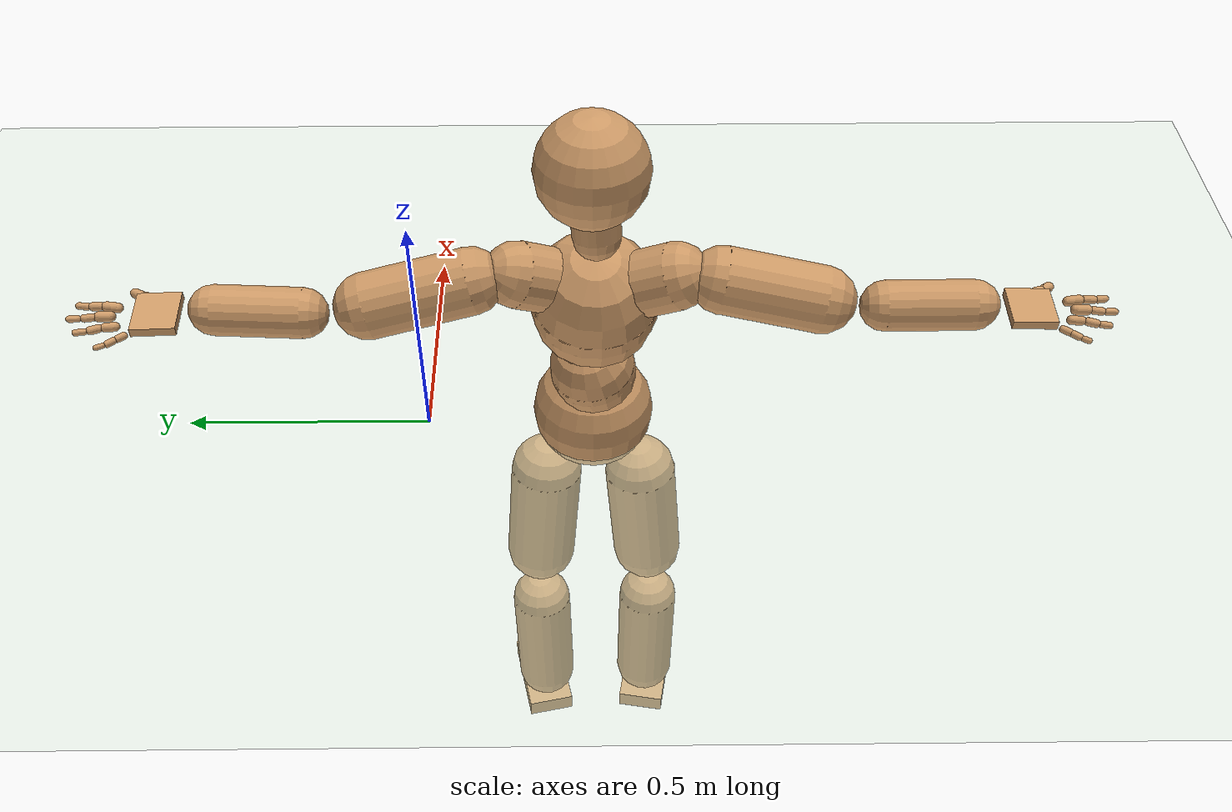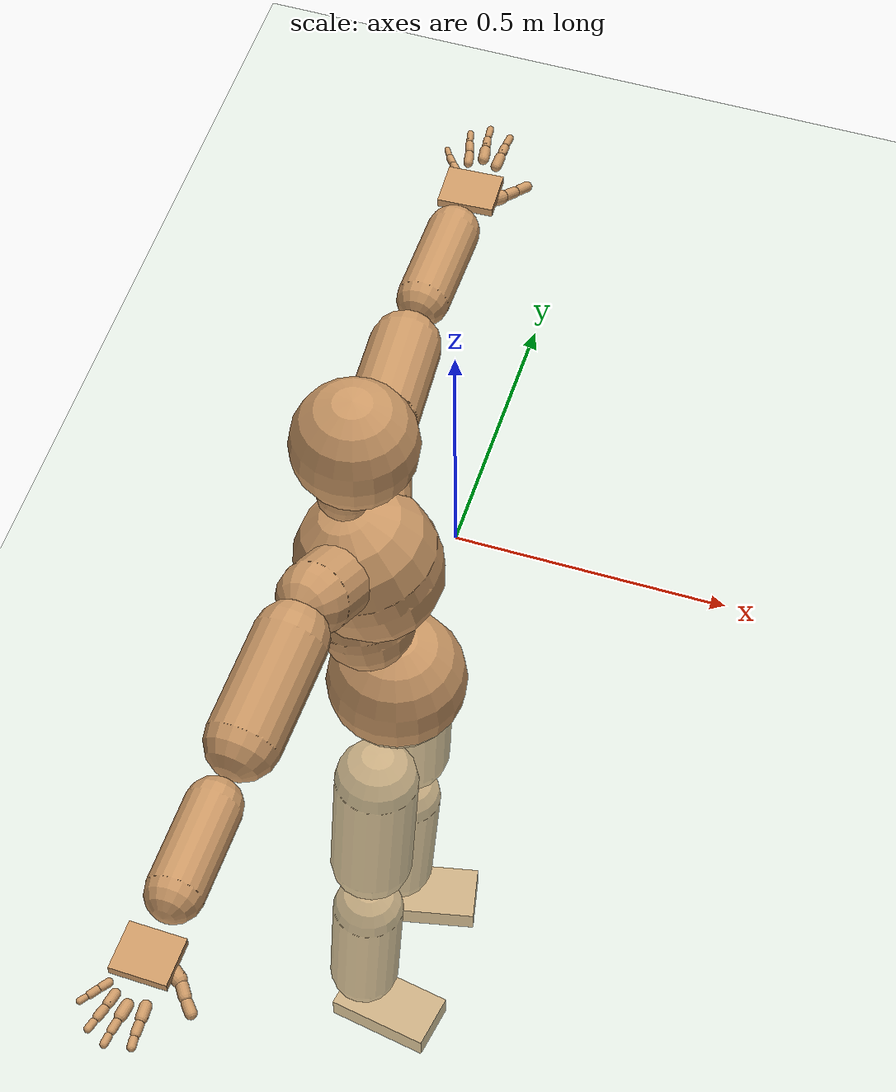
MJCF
<mujoco model="humanoid">
  <compiler coordinate="local" angle="radian"/>
  <default>
    <joint damping="0.0" armature="0.01" stiffness="0.0" limited="true"/>
    <geom conaffinity="1" condim="3" contype="7" margin="0.001" rgba="0.8 0.6 .4 1"/>
  </default>
  <asset>
    <texture type="skybox" builtin="gradient" rgb1=".4 .5 .6" rgb2="0 0 0" width="100" height="100"/>
    <texture builtin="flat" height="1278" mark="cross" markrgb="1 1 1" name="texgeom" random="0.01" rgb1="0.8 0.6 0.4" rgb2="0.8 0.6 0.4" type="cube" width="127"/>
    <texture builtin="checker" height="100" name="texplane" rgb1="0 0 0" rgb2="0.8 0.8 0.8" type="2d" width="100"/>
    <material name="MatPlane" reflectance="0.5" shininess="1" specular="1" texrepeat="60 60" texture="texplane"/>
    <material name="geom" texture="texgeom" texuniform="true"/>
  </asset>
  <worldbody>
    <light cutoff="100" diffuse="1 1 1" dir="-0 0 -1.3" directional="true" exponent="1" pos="0 0 1.3" specular=".1 .1 .1"/>
    <geom conaffinity="1" condim="3" name="floor" pos="0 0 0" rgba="0.8 0.9 0.8 1" size="100 100 .2" type="plane" material="MatPlane"/>
    <body name="Pelvis" pos="0.0011 -0.3418 0.0403">
      <freejoint name="Pelvis"/>
      <geom type="sphere" contype="1" conaffinity="1" density="500" size="0.1231" pos="0.0000 0.0000 0.0000" name="Pelvis"/>
      <body name="L_Hip" pos="-0.0037 0.0947 -0.0945">
        <joint name="L_Hip_x" type="hinge" pos="0 0 0" axis="1 0 0" stiffness="800" damping="80" armature="0.02" range="-180.0000 180.0000"/>
        <joint name="L_Hip_y" type="hinge" pos="0 0 0" axis="0 1 0" stiffness="800" damping="80" armature="0.02" range="-180.0000 180.0000"/>
        <joint name="L_Hip_z" type="hinge" pos="0 0 0" axis="0 0 1" stiffness="800" damping="80" armature="0.02" range="-180.0000 180.0000"/>
        <geom type="capsule" contype="1" conaffinity="1" density="500" fromto="-0.0046 0.0061 -0.0847 -0.0185 0.0245 -0.3388" size="0.0754" name="L_Hip"/>
        <body name="L_Knee" pos="-0.0231 0.0306 -0.4236">
          <joint name="L_Knee_x" type="hinge" pos="0 0 0" axis="1 0 0" stiffness="800" damping="80" armature="0.02" range="-180.0000 180.0000"/>
          <joint name="L_Knee_y" type="hinge" pos="0 0 0" axis="0 1 0" stiffness="800" damping="80" armature="0.02" range="-180.0000 180.0000"/>
          <joint name="L_Knee_z" type="hinge" pos="0 0 0" axis="0 0 1" stiffness="800" damping="80" armature="0.02" range="-180.0000 180.0000"/>
          <geom type="capsule" contype="1" conaffinity="1" density="500" fromto="-0.0060 -0.0020 -0.0910 -0.0242 -0.0080 -0.3638" size="0.0664" name="L_Knee"/>
          <body name="L_Ankle" pos="-0.0302 -0.01 -0.4548">
            <joint name="L_Ankle_x" type="hinge" pos="0 0 0" axis="1 0 0" stiffness="800" damping="80" armature="0.02" range="-180.0000 180.0000"/>
            <joint name="L_Ankle_y" type="hinge" pos="0 0 0" axis="0 1 0" stiffness="800" damping="80" armature="0.02" range="-180.0000 180.0000"/>
            <joint name="L_Ankle_z" type="hinge" pos="0 0 0" axis="0 0 1" stiffness="800" damping="80" armature="0.02" range="-180.0000 180.0000"/>
            <geom type="box" contype="1" conaffinity="1" density="500" pos="0.0608 0.0128 -0.0248" size="0.0984 0.0533 0.0232" quat="0.9946 0.0000 0.0000 0.1037" name="L_Ankle"/>
            <body name="L_Toe" pos="0.1215 0.0256 -0.0496">
              <joint name="L_Toe_x" type="hinge" pos="0 0 0" axis="1 0 0" stiffness="500" damping="50" armature="0.02" range="-180.0000 180.0000"/>
              <joint name="L_Toe_y" type="hinge" pos="0 0 0" axis="0 1 0" stiffness="500" damping="50" armature="0.02" range="-180.0000 180.0000"/>
              <joint name="L_Toe_z" type="hinge" pos="0 0 0" axis="0 0 1" stiffness="500" damping="50" armature="0.02" range="-180.0000 180.0000"/>
              <geom type="box" contype="1" conaffinity="1" density="500" pos="0.0000 0.0000 0.0238" size="0.001 0.0026 0.0011" quat="0.9940 0.0000 0.0000 0.1098" name="L_Toe"/>
            </body>
          </body>
        </body>
      </body>
      <body name="R_Hip" pos="-0.0048 -0.0943 -0.1003">
        <joint name="R_Hip_x" type="hinge" pos="0 0 0" axis="1 0 0" stiffness="800" damping="80" armature="0.02" range="-180.0000 180.0000"/>
        <joint name="R_Hip_y" type="hinge" pos="0 0 0" axis="0 1 0" stiffness="800" damping="80" armature="0.02" range="-180.0000 180.0000"/>
        <joint name="R_Hip_z" type="hinge" pos="0 0 0" axis="0 0 1" stiffness="800" damping="80" armature="0.02" range="-180.0000 180.0000"/>
        <geom type="capsule" contype="1" conaffinity="1" density="500" fromto="-0.0031 -0.0072 -0.0841 -0.0125 -0.0286 -0.3364" size="0.0752" name="R_Hip"/>
        <body name="R_Knee" pos="-0.0156 -0.0358 -0.4205">
          <joint name="R_Knee_x" type="hinge" pos="0 0 0" axis="1 0 0" stiffness="800" damping="80" armature="0.02" range="-180.0000 180.0000"/>
          <joint name="R_Knee_y" type="hinge" pos="0 0 0" axis="0 1 0" stiffness="800" damping="80" armature="0.02" range="-180.0000 180.0000"/>
          <joint name="R_Knee_z" type="hinge" pos="0 0 0" axis="0 0 1" stiffness="800" damping="80" armature="0.02" range="-180.0000 180.0000"/>
          <geom type="capsule" contype="1" conaffinity="1" density="500" fromto="-0.0055 0.0008 -0.0891 -0.0221 0.0032 -0.3563" size="0.0664" name="R_Knee"/>
          <body name="R_Ankle" pos="-0.0276 0.004 -0.4454">
            <joint name="R_Ankle_x" type="hinge" pos="0 0 0" axis="1 0 0" stiffness="800" damping="80" armature="0.02" range="-180.0000 180.0000"/>
            <joint name="R_Ankle_y" type="hinge" pos="0 0 0" axis="0 1 0" stiffness="800" damping="80" armature="0.02" range="-180.0000 180.0000"/>
            <joint name="R_Ankle_z" type="hinge" pos="0 0 0" axis="0 0 1" stiffness="800" damping="80" armature="0.02" range="-180.0000 180.0000"/>
            <geom type="box" contype="1" conaffinity="1" density="500" pos="0.0578 -0.0101 -0.0262" size="0.0984 0.0533 0.0232" quat="0.9963 0.0000 0.0000 -0.0864" name="R_Ankle"/>
            <body name="R_Toe" pos="0.1155 -0.0202 -0.0524">
              <joint name="R_Toe_x" type="hinge" pos="0 0 0" axis="1 0 0" stiffness="500" damping="50" armature="0.02" range="-180.0000 180.0000"/>
              <joint name="R_Toe_y" type="hinge" pos="0 0 0" axis="0 1 0" stiffness="500" damping="50" armature="0.02" range="-180.0000 180.0000"/>
              <joint name="R_Toe_z" type="hinge" pos="0 0 0" axis="0 0 1" stiffness="500" damping="50" armature="0.02" range="-180.0000 180.0000"/>
              <geom type="box" contype="1" conaffinity="1" density="500" pos="0.0000 0.0000 0.0252" size="0.001 0.0026 0.0011" quat="0.9971 0.0000 0.0000 -0.0767" name="R_Toe"/>
            </body>
          </body>
        </body>
      </body>
      <body name="Torso" pos="-0.041 -0.0075 0.1131">
        <joint name="Torso_x" type="hinge" pos="0 0 0" axis="1 0 0" stiffness="1000" damping="100" armature="0.02" range="-180.0000 180.0000"/>
        <joint name="Torso_y" type="hinge" pos="0 0 0" axis="0 1 0" stiffness="1000" damping="100" armature="0.02" range="-180.0000 180.0000"/>
        <joint name="Torso_z" type="hinge" pos="0 0 0" axis="0 0 1" stiffness="1000" damping="100" armature="0.02" range="-180.0000 180.0000"/>
        <geom type="capsule" contype="1" conaffinity="1" density="500" fromto="-0.0134 0.0100 0.0563 -0.0089 0.0066 0.0375" size="0.0837" name="Torso"/>
        <body name="Spine" pos="-0.0223 0.0166 0.0938">
          <joint name="Spine_x" type="hinge" pos="0 0 0" axis="1 0 0" stiffness="1000" damping="100" armature="0.02" range="-180.0000 180.0000"/>
          <joint name="Spine_y" type="hinge" pos="0 0 0" axis="0 1 0" stiffness="1000" damping="100" armature="0.02" range="-180.0000 180.0000"/>
          <joint name="Spine_z" type="hinge" pos="0 0 0" axis="0 0 1" stiffness="1000" damping="100" armature="0.02" range="-180.0000 180.0000"/>
          <geom type="capsule" contype="1" conaffinity="1" density="500" fromto="0.0282 -0.0061 0.0238 0.0188 -0.0041 0.0159" size="0.0701" name="Spine"/>
          <body name="Chest" pos="0.0471 -0.0102 0.0396">
            <joint name="Chest_x" type="hinge" pos="0 0 0" axis="1 0 0" stiffness="1000" damping="100" armature="0.02" range="-180.0000 180.0000"/>
            <joint name="Chest_y" type="hinge" pos="0 0 0" axis="0 1 0" stiffness="1000" damping="100" armature="0.02" range="-180.0000 180.0000"/>
            <joint name="Chest_z" type="hinge" pos="0 0 0" axis="0 0 1" stiffness="1000" damping="100" armature="0.02" range="-180.0000 180.0000"/>
            <geom type="capsule" contype="1" conaffinity="1" density="500" fromto="-0.0282 -0.0017 0.0971 -0.0188 -0.0012 0.0648" size="0.1215" name="Chest"/>
            <body name="Neck" pos="-0.0648 -0.0064 0.2283">
              <joint name="Neck_x" type="hinge" pos="0 0 0" axis="1 0 0" stiffness="500" damping="50" armature="0.02" range="-180.0000 180.0000"/>
              <joint name="Neck_y" type="hinge" pos="0 0 0" axis="0 1 0" stiffness="500" damping="50" armature="0.02" range="-180.0000 180.0000"/>
              <joint name="Neck_z" type="hinge" pos="0 0 0" axis="0 0 1" stiffness="500" damping="50" armature="0.02" range="-180.0000 180.0000"/>
              <geom type="capsule" contype="1" conaffinity="1" density="500" fromto="0.0048 0.0019 0.0314 0.0192 0.0076 0.1256" size="0.0448" name="Neck"/>
              <body name="Head" pos="0.024 0.0096 0.1571">
                <joint name="Head_x" type="hinge" pos="0 0 0" axis="1 0 0" stiffness="500" damping="50" armature="0.02" range="-180.0000 180.0000"/>
                <joint name="Head_y" type="hinge" pos="0 0 0" axis="0 1 0" stiffness="500" damping="50" armature="0.02" range="-180.0000 180.0000"/>
                <joint name="Head_z" type="hinge" pos="0 0 0" axis="0 0 1" stiffness="500" damping="50" armature="0.02" range="-180.0000 180.0000"/>
                <geom type="sphere" contype="1" conaffinity="1" density="500" size="0.1039" pos="0.0000 0.0000 0.0000" name="Head"/>
              </body>
            </body>
            <body name="L_Thorax" pos="-0.034 0.06 0.1312">
              <joint name="L_Thorax_x" type="hinge" pos="0 0 0" axis="1 0 0" stiffness="500" damping="50" armature="0.02" range="-180.0000 180.0000"/>
              <joint name="L_Thorax_y" type="hinge" pos="0 0 0" axis="0 1 0" stiffness="500" damping="50" armature="0.02" range="-180.0000 180.0000"/>
              <joint name="L_Thorax_z" type="hinge" pos="0 0 0" axis="0 0 1" stiffness="500" damping="50" armature="0.02" range="-180.0000 180.0000"/>
              <geom type="capsule" contype="1" conaffinity="1" density="500" fromto="-0.0069 0.0201 0.0106 -0.0277 0.0804 0.0425" size="0.0618" name="L_Thorax"/>
              <body name="L_Shoulder" pos="-0.0346 0.1004 0.0531">
                <joint name="L_Shoulder_x" type="hinge" pos="0 0 0" axis="1 0 0" stiffness="500" damping="50" armature="0.02" range="-180.0000 180.0000"/>
                <joint name="L_Shoulder_y" type="hinge" pos="0 0 0" axis="0 1 0" stiffness="500" damping="50" armature="0.02" range="-180.0000 180.0000"/>
                <joint name="L_Shoulder_z" type="hinge" pos="0 0 0" axis="0 0 1" stiffness="500" damping="50" armature="0.02" range="-180.0000 180.0000"/>
                <geom type="capsule" contype="1" conaffinity="1" density="500" fromto="-0.0069 0.0628 -0.0132 -0.0275 0.2513 -0.0526" size="0.0624" name="L_Shoulder"/>
                <body name="L_Elbow" pos="-0.0344 0.3142 -0.0658">
                  <joint name="L_Elbow_x" type="hinge" pos="0 0 0" axis="1 0 0" stiffness="500" damping="50" armature="0.02" range="-720.0000 720.0000"/>
                  <joint name="L_Elbow_y" type="hinge" pos="0 0 0" axis="0 1 0" stiffness="500" damping="50" armature="0.02" range="-720.0000 720.0000"/>
                  <joint name="L_Elbow_z" type="hinge" pos="0 0 0" axis="0 0 1" stiffness="500" damping="50" armature="0.02" range="-720.0000 720.0000"/>
                  <geom type="capsule" contype="1" conaffinity="1" density="500" fromto="0.0012 0.0536 0.0019 0.0049 0.2146 0.0074" size="0.0468" name="L_Elbow"/>
                  <body name="L_Wrist" pos="0.0061 0.2682 0.0093">
                    <joint name="L_Wrist_x" type="hinge" pos="0 0 0" axis="1 0 0" stiffness="300" damping="30" armature="0.02" range="-180.0000 180.0000"/>
                    <joint name="L_Wrist_y" type="hinge" pos="0 0 0" axis="0 1 0" stiffness="300" damping="30" armature="0.02" range="-180.0000 180.0000"/>
                    <joint name="L_Wrist_z" type="hinge" pos="0 0 0" axis="0 0 1" stiffness="300" damping="30" armature="0.02" range="-180.0000 180.0000"/>
                    <geom type="box" contype="1" conaffinity="1" density="500" pos="-0.0025 0.0526 -0.0094" size="0.041 0.0497 0.0082" quat="0.7234 0.0000 0.0000 -0.6905" name="L_Wrist"/>
                    <body name="L_Index1" pos="0.0209 0.1223 -0.0159">
                      <joint name="L_Index1_x" type="hinge" pos="0 0 0" axis="1 0 0" stiffness="100" damping="10" armature="0.02" range="-180.0000 180.0000"/>
                      <joint name="L_Index1_y" type="hinge" pos="0 0 0" axis="0 1 0" stiffness="100" damping="10" armature="0.02" range="-180.0000 180.0000"/>
                      <joint name="L_Index1_z" type="hinge" pos="0 0 0" axis="0 0 1" stiffness="100" damping="10" armature="0.02" range="-180.0000 180.0000"/>
                      <geom type="capsule" contype="1" conaffinity="1" density="500" fromto="0.0005 0.0068 0.0007 0.0019 0.0272 0.0027" size="0.0096" name="L_Index1"/>
                      <body name="L_Index2" pos="0.0024 0.0339 0.0034">
                        <joint name="L_Index2_x" type="hinge" pos="0 0 0" axis="1 0 0" stiffness="100" damping="10" armature="0.02" range="-180.0000 180.0000"/>
                        <joint name="L_Index2_y" type="hinge" pos="0 0 0" axis="0 1 0" stiffness="100" damping="10" armature="0.02" range="-180.0000 180.0000"/>
                        <joint name="L_Index2_z" type="hinge" pos="0 0 0" axis="0 0 1" stiffness="100" damping="10" armature="0.02" range="-180.0000 180.0000"/>
                        <geom type="capsule" contype="1" conaffinity="1" density="500" fromto="0.0001 0.0048 -0.0003 0.0003 0.0191 -0.0011" size="0.008" name="L_Index2"/>
                        <body name="L_Index3" pos="0.0003 0.0238 -0.0014">
                          <joint name="L_Index3_x" type="hinge" pos="0 0 0" axis="1 0 0" stiffness="100" damping="10" armature="0.02" range="-180.0000 180.0000"/>
                          <joint name="L_Index3_y" type="hinge" pos="0 0 0" axis="0 1 0" stiffness="100" damping="10" armature="0.02" range="-180.0000 180.0000"/>
                          <joint name="L_Index3_z" type="hinge" pos="0 0 0" axis="0 0 1" stiffness="100" damping="10" armature="0.02" range="-180.0000 180.0000"/>
                          <geom type="capsule" contype="1" conaffinity="1" density="500" fromto="0.0005 0.0052 0.0001 0.0019 0.0207 0.0005" size="0.0067" name="L_Index3"/>
                        </body>
                      </body>
                    </body>
                    <body name="L_Middle1" pos="-0.0036 0.1303 -0.013">
                      <joint name="L_Middle1_x" type="hinge" pos="0 0 0" axis="1 0 0" stiffness="100" damping="10" armature="0.02" range="-180.0000 180.0000"/>
                      <joint name="L_Middle1_y" type="hinge" pos="0 0 0" axis="0 1 0" stiffness="100" damping="10" armature="0.02" range="-180.0000 180.0000"/>
                      <joint name="L_Middle1_z" type="hinge" pos="0 0 0" axis="0 0 1" stiffness="100" damping="10" armature="0.02" range="-180.0000 180.0000"/>
                      <geom type="capsule" contype="1" conaffinity="1" density="500" fromto="-0.0008 0.0064 0.0004 -0.0034 0.0258 0.0015" size="0.0099" name="L_Middle1"/>
                      <body name="L_Middle2" pos="-0.0042 0.0322 0.0019">
                        <joint name="L_Middle2_x" type="hinge" pos="0 0 0" axis="1 0 0" stiffness="100" damping="10" armature="0.02" range="-180.0000 180.0000"/>
                        <joint name="L_Middle2_y" type="hinge" pos="0 0 0" axis="0 1 0" stiffness="100" damping="10" armature="0.02" range="-180.0000 180.0000"/>
                        <joint name="L_Middle2_z" type="hinge" pos="0 0 0" axis="0 0 1" stiffness="100" damping="10" armature="0.02" range="-180.0000 180.0000"/>
                        <geom type="capsule" contype="1" conaffinity="1" density="500" fromto="-0.0008 0.0050 -0.0001 -0.0032 0.0199 -0.0005" size="0.0073" name="L_Middle2"/>
                        <body name="L_Middle3" pos="-0.004 0.0249 -0.0007">
                          <joint name="L_Middle3_x" type="hinge" pos="0 0 0" axis="1 0 0" stiffness="100" damping="10" armature="0.02" range="-180.0000 180.0000"/>
                          <joint name="L_Middle3_y" type="hinge" pos="0 0 0" axis="0 1 0" stiffness="100" damping="10" armature="0.02" range="-180.0000 180.0000"/>
                          <joint name="L_Middle3_z" type="hinge" pos="0 0 0" axis="0 0 1" stiffness="100" damping="10" armature="0.02" range="-180.0000 180.0000"/>
                          <geom type="capsule" contype="1" conaffinity="1" density="500" fromto="-0.0004 0.0054 0.0003 -0.0016 0.0215 0.0011" size="0.0062" name="L_Middle3"/>
                        </body>
                      </body>
                    </body>
                    <body name="L_Pinky1" pos="-0.0435 0.1027 -0.0225">
                      <joint name="L_Pinky1_x" type="hinge" pos="0 0 0" axis="1 0 0" stiffness="100" damping="10" armature="0.02" range="-180.0000 180.0000"/>
                      <joint name="L_Pinky1_y" type="hinge" pos="0 0 0" axis="0 1 0" stiffness="100" damping="10" armature="0.02" range="-180.0000 180.0000"/>
                      <joint name="L_Pinky1_z" type="hinge" pos="0 0 0" axis="0 0 1" stiffness="100" damping="10" armature="0.02" range="-180.0000 180.0000"/>
                      <geom type="capsule" contype="1" conaffinity="1" density="500" fromto="-0.0025 0.0032 -0.0001 -0.0100 0.0130 -0.0005" size="0.0069" name="L_Pinky1"/>
                      <body name="L_Pinky2" pos="-0.0125 0.0162 -0.0006">
                        <joint name="L_Pinky2_x" type="hinge" pos="0 0 0" axis="1 0 0" stiffness="100" damping="10" armature="0.02" range="-180.0000 180.0000"/>
                        <joint name="L_Pinky2_y" type="hinge" pos="0 0 0" axis="0 1 0" stiffness="100" damping="10" armature="0.02" range="-180.0000 180.0000"/>
                        <joint name="L_Pinky2_z" type="hinge" pos="0 0 0" axis="0 0 1" stiffness="100" damping="10" armature="0.02" range="-180.0000 180.0000"/>
                        <geom type="capsule" contype="1" conaffinity="1" density="500" fromto="-0.0024 0.0032 -0.0002 -0.0097 0.0129 -0.0010" size="0.0067" name="L_Pinky2"/>
                        <body name="L_Pinky3" pos="-0.0121 0.0161 -0.0012">
                          <joint name="L_Pinky3_x" type="hinge" pos="0 0 0" axis="1 0 0" stiffness="100" damping="10" armature="0.02" range="-180.0000 180.0000"/>
                          <joint name="L_Pinky3_y" type="hinge" pos="0 0 0" axis="0 1 0" stiffness="100" damping="10" armature="0.02" range="-180.0000 180.0000"/>
                          <joint name="L_Pinky3_z" type="hinge" pos="0 0 0" axis="0 0 1" stiffness="100" damping="10" armature="0.02" range="-180.0000 180.0000"/>
                          <geom type="capsule" contype="1" conaffinity="1" density="500" fromto="-0.0020 0.0036 0.0002 -0.0081 0.0145 0.0006" size="0.0051" name="L_Pinky3"/>
                        </body>
                      </body>
                    </body>
                    <body name="L_Ring1" pos="-0.0276 0.1173 -0.0165">
                      <joint name="L_Ring1_x" type="hinge" pos="0 0 0" axis="1 0 0" stiffness="100" damping="10" armature="0.02" range="-180.0000 180.0000"/>
                      <joint name="L_Ring1_y" type="hinge" pos="0 0 0" axis="0 1 0" stiffness="100" damping="10" armature="0.02" range="-180.0000 180.0000"/>
                      <joint name="L_Ring1_z" type="hinge" pos="0 0 0" axis="0 0 1" stiffness="100" damping="10" armature="0.02" range="-180.0000 180.0000"/>
                      <geom type="capsule" contype="1" conaffinity="1" density="500" fromto="-0.0012 0.0059 0.0004 -0.0047 0.0237 0.0016" size="0.0084" name="L_Ring1"/>
                      <body name="L_Ring2" pos="-0.0058 0.0296 0.002">
                        <joint name="L_Ring2_x" type="hinge" pos="0 0 0" axis="1 0 0" stiffness="100" damping="10" armature="0.02" range="-180.0000 180.0000"/>
                        <joint name="L_Ring2_y" type="hinge" pos="0 0 0" axis="0 1 0" stiffness="100" damping="10" armature="0.02" range="-180.0000 180.0000"/>
                        <joint name="L_Ring2_z" type="hinge" pos="0 0 0" axis="0 0 1" stiffness="100" damping="10" armature="0.02" range="-180.0000 180.0000"/>
                        <geom type="capsule" contype="1" conaffinity="1" density="500" fromto="-0.0015 0.0048 -0.0002 -0.0061 0.0191 -0.0009" size="0.0077" name="L_Ring2"/>
                        <body name="L_Ring3" pos="-0.0077 0.0239 -0.0012">
                          <joint name="L_Ring3_x" type="hinge" pos="0 0 0" axis="1 0 0" stiffness="100" damping="10" armature="0.02" range="-180.0000 180.0000"/>
                          <joint name="L_Ring3_y" type="hinge" pos="0 0 0" axis="0 1 0" stiffness="100" damping="10" armature="0.02" range="-180.0000 180.0000"/>
                          <joint name="L_Ring3_z" type="hinge" pos="0 0 0" axis="0 0 1" stiffness="100" damping="10" armature="0.02" range="-180.0000 180.0000"/>
                          <geom type="capsule" contype="1" conaffinity="1" density="500" fromto="-0.0011 0.0052 0.0002 -0.0045 0.0207 0.0007" size="0.006" name="L_Ring3"/>
                        </body>
                      </body>
                    </body>
                    <body name="L_Thumb1" pos="0.0293 0.0537 -0.0256">
                      <joint name="L_Thumb1_x" type="hinge" pos="0 0 0" axis="1 0 0" stiffness="100" damping="10" armature="0.02" range="-180.0000 180.0000"/>
                      <joint name="L_Thumb1_y" type="hinge" pos="0 0 0" axis="0 1 0" stiffness="100" damping="10" armature="0.02" range="-180.0000 180.0000"/>
                      <joint name="L_Thumb1_z" type="hinge" pos="0 0 0" axis="0 0 1" stiffness="100" damping="10" armature="0.02" range="-180.0000 180.0000"/>
                      <geom type="capsule" contype="1" conaffinity="1" density="500" fromto="0.0050 0.0039 0.0002 0.0201 0.0156 0.0009" size="0.013" name="L_Thumb1"/>
                      <body name="L_Thumb2" pos="0.0251 0.0195 0.0011">
                        <joint name="L_Thumb2_x" type="hinge" pos="0 0 0" axis="1 0 0" stiffness="100" damping="10" armature="0.02" range="-180.0000 180.0000"/>
                        <joint name="L_Thumb2_y" type="hinge" pos="0 0 0" axis="0 1 0" stiffness="100" damping="10" armature="0.02" range="-180.0000 180.0000"/>
                        <joint name="L_Thumb2_z" type="hinge" pos="0 0 0" axis="0 0 1" stiffness="100" damping="10" armature="0.02" range="-180.0000 180.0000"/>
                        <geom type="capsule" contype="1" conaffinity="1" density="500" fromto="0.0031 0.0045 -0.0012 0.0122 0.0180 -0.0049" size="0.0101" name="L_Thumb2"/>
                        <body name="L_Thumb3" pos="0.0153 0.0225 -0.0061">
                          <joint name="L_Thumb3_x" type="hinge" pos="0 0 0" axis="1 0 0" stiffness="100" damping="10" armature="0.02" range="-180.0000 180.0000"/>
                          <joint name="L_Thumb3_y" type="hinge" pos="0 0 0" axis="0 1 0" stiffness="100" damping="10" armature="0.02" range="-180.0000 180.0000"/>
                          <joint name="L_Thumb3_z" type="hinge" pos="0 0 0" axis="0 0 1" stiffness="100" damping="10" armature="0.02" range="-180.0000 180.0000"/>
                          <geom type="capsule" contype="1" conaffinity="1" density="500" fromto="0.0035 0.0049 -0.0008 0.0138 0.0196 -0.0033" size="0.0094" name="L_Thumb3"/>
                        </body>
                      </body>
                    </body>
                  </body>
                </body>
              </body>
            </body>
            <body name="R_Thorax" pos="-0.0424 -0.0623 0.1263">
              <joint name="R_Thorax_x" type="hinge" pos="0 0 0" axis="1 0 0" stiffness="500" damping="50" armature="0.02" range="-180.0000 180.0000"/>
              <joint name="R_Thorax_y" type="hinge" pos="0 0 0" axis="0 1 0" stiffness="500" damping="50" armature="0.02" range="-180.0000 180.0000"/>
              <joint name="R_Thorax_z" type="hinge" pos="0 0 0" axis="0 0 1" stiffness="500" damping="50" armature="0.02" range="-180.0000 180.0000"/>
              <geom type="capsule" contype="1" conaffinity="1" density="500" fromto="-0.0051 -0.0219 0.0106 -0.0204 -0.0874 0.0425" size="0.0633" name="R_Thorax"/>
              <body name="R_Shoulder" pos="-0.0255 -0.1093 0.0531">
                <joint name="R_Shoulder_x" type="hinge" pos="0 0 0" axis="1 0 0" stiffness="500" damping="50" armature="0.02" range="-180.0000 180.0000"/>
                <joint name="R_Shoulder_y" type="hinge" pos="0 0 0" axis="0 1 0" stiffness="500" damping="50" armature="0.02" range="-180.0000 180.0000"/>
                <joint name="R_Shoulder_z" type="hinge" pos="0 0 0" axis="0 0 1" stiffness="500" damping="50" armature="0.02" range="-180.0000 180.0000"/>
                <geom type="capsule" contype="1" conaffinity="1" density="500" fromto="-0.0053 -0.0609 -0.0116 -0.0212 -0.2437 -0.0463" size="0.0629" name="R_Shoulder"/>
                <body name="R_Elbow" pos="-0.0265 -0.3046 -0.0578">
                  <joint name="R_Elbow_x" type="hinge" pos="0 0 0" axis="1 0 0" stiffness="500" damping="50" armature="0.02" range="-720.0000 720.0000"/>
                  <joint name="R_Elbow_y" type="hinge" pos="0 0 0" axis="0 1 0" stiffness="500" damping="50" armature="0.02" range="-720.0000 720.0000"/>
                  <joint name="R_Elbow_z" type="hinge" pos="0 0 0" axis="0 0 1" stiffness="500" damping="50" armature="0.02" range="-720.0000 720.0000"/>
                  <geom type="capsule" contype="1" conaffinity="1" density="500" fromto="-0.0009 -0.0537 0.0011 -0.0036 -0.2147 0.0042" size="0.047" name="R_Elbow"/>
                  <body name="R_Wrist" pos="-0.0044 -0.2683 0.0053">
                    <joint name="R_Wrist_x" type="hinge" pos="0 0 0" axis="1 0 0" stiffness="300" damping="30" armature="0.02" range="-180.0000 180.0000"/>
                    <joint name="R_Wrist_y" type="hinge" pos="0 0 0" axis="0 1 0" stiffness="300" damping="30" armature="0.02" range="-180.0000 180.0000"/>
                    <joint name="R_Wrist_z" type="hinge" pos="0 0 0" axis="0 0 1" stiffness="300" damping="30" armature="0.02" range="-180.0000 180.0000"/>
                    <geom type="box" contype="1" conaffinity="1" density="500" pos="-0.0015 -0.0517 -0.0089" size="0.041 0.0464 0.0084" quat="0.7171 0.0000 0.0000 0.6970" name="R_Wrist"/>
                    <body name="R_Index1" pos="0.0228 -0.1205 -0.0149">
                      <joint name="R_Index1_x" type="hinge" pos="0 0 0" axis="1 0 0" stiffness="100" damping="10" armature="0.02" range="-180.0000 180.0000"/>
                      <joint name="R_Index1_y" type="hinge" pos="0 0 0" axis="0 1 0" stiffness="100" damping="10" armature="0.02" range="-180.0000 180.0000"/>
                      <joint name="R_Index1_z" type="hinge" pos="0 0 0" axis="0 0 1" stiffness="100" damping="10" armature="0.02" range="-180.0000 180.0000"/>
                      <geom type="capsule" contype="1" conaffinity="1" density="500" fromto="0.0005 -0.0068 0.0007 0.0019 -0.0272 0.0027" size="0.0096" name="R_Index1"/>
                      <body name="R_Index2" pos="0.0024 -0.0339 0.0034">
                        <joint name="R_Index2_x" type="hinge" pos="0 0 0" axis="1 0 0" stiffness="100" damping="10" armature="0.02" range="-180.0000 180.0000"/>
                        <joint name="R_Index2_y" type="hinge" pos="0 0 0" axis="0 1 0" stiffness="100" damping="10" armature="0.02" range="-180.0000 180.0000"/>
                        <joint name="R_Index2_z" type="hinge" pos="0 0 0" axis="0 0 1" stiffness="100" damping="10" armature="0.02" range="-180.0000 180.0000"/>
                        <geom type="capsule" contype="1" conaffinity="1" density="500" fromto="0.0001 -0.0048 -0.0003 0.0003 -0.0191 -0.0011" size="0.008" name="R_Index2"/>
                        <body name="R_Index3" pos="0.0003 -0.0238 -0.0014">
                          <joint name="R_Index3_x" type="hinge" pos="0 0 0" axis="1 0 0" stiffness="100" damping="10" armature="0.02" range="-180.0000 180.0000"/>
                          <joint name="R_Index3_y" type="hinge" pos="0 0 0" axis="0 1 0" stiffness="100" damping="10" armature="0.02" range="-180.0000 180.0000"/>
                          <joint name="R_Index3_z" type="hinge" pos="0 0 0" axis="0 0 1" stiffness="100" damping="10" armature="0.02" range="-180.0000 180.0000"/>
                          <geom type="capsule" contype="1" conaffinity="1" density="500" fromto="0.0005 -0.0044 0.0001 0.0019 -0.0175 0.0005" size="0.007" name="R_Index3"/>
                        </body>
                      </body>
                    </body>
                    <body name="R_Middle1" pos="-0.0016 -0.1285 -0.012">
                      <joint name="R_Middle1_x" type="hinge" pos="0 0 0" axis="1 0 0" stiffness="100" damping="10" armature="0.02" range="-180.0000 180.0000"/>
                      <joint name="R_Middle1_y" type="hinge" pos="0 0 0" axis="0 1 0" stiffness="100" damping="10" armature="0.02" range="-180.0000 180.0000"/>
                      <joint name="R_Middle1_z" type="hinge" pos="0 0 0" axis="0 0 1" stiffness="100" damping="10" armature="0.02" range="-180.0000 180.0000"/>
                      <geom type="capsule" contype="1" conaffinity="1" density="500" fromto="-0.0008 -0.0064 0.0004 -0.0034 -0.0258 0.0015" size="0.0099" name="R_Middle1"/>
                      <body name="R_Middle2" pos="-0.0042 -0.0322 0.0019">
                        <joint name="R_Middle2_x" type="hinge" pos="0 0 0" axis="1 0 0" stiffness="100" damping="10" armature="0.02" range="-180.0000 180.0000"/>
                        <joint name="R_Middle2_y" type="hinge" pos="0 0 0" axis="0 1 0" stiffness="100" damping="10" armature="0.02" range="-180.0000 180.0000"/>
                        <joint name="R_Middle2_z" type="hinge" pos="0 0 0" axis="0 0 1" stiffness="100" damping="10" armature="0.02" range="-180.0000 180.0000"/>
                        <geom type="capsule" contype="1" conaffinity="1" density="500" fromto="-0.0008 -0.0050 -0.0001 -0.0032 -0.0199 -0.0005" size="0.0073" name="R_Middle2"/>
                        <body name="R_Middle3" pos="-0.004 -0.0249 -0.0007">
                          <joint name="R_Middle3_x" type="hinge" pos="0 0 0" axis="1 0 0" stiffness="100" damping="10" armature="0.02" range="-180.0000 180.0000"/>
                          <joint name="R_Middle3_y" type="hinge" pos="0 0 0" axis="0 1 0" stiffness="100" damping="10" armature="0.02" range="-180.0000 180.0000"/>
                          <joint name="R_Middle3_z" type="hinge" pos="0 0 0" axis="0 0 1" stiffness="100" damping="10" armature="0.02" range="-180.0000 180.0000"/>
                          <geom type="capsule" contype="1" conaffinity="1" density="500" fromto="-0.0004 -0.0046 0.0003 -0.0016 -0.0183 0.0011" size="0.0064" name="R_Middle3"/>
                        </body>
                      </body>
                    </body>
                    <body name="R_Pinky1" pos="-0.0416 -0.1009 -0.0216">
                      <joint name="R_Pinky1_x" type="hinge" pos="0 0 0" axis="1 0 0" stiffness="100" damping="10" armature="0.02" range="-180.0000 180.0000"/>
                      <joint name="R_Pinky1_y" type="hinge" pos="0 0 0" axis="0 1 0" stiffness="100" damping="10" armature="0.02" range="-180.0000 180.0000"/>
                      <joint name="R_Pinky1_z" type="hinge" pos="0 0 0" axis="0 0 1" stiffness="100" damping="10" armature="0.02" range="-180.0000 180.0000"/>
                      <geom type="capsule" contype="1" conaffinity="1" density="500" fromto="-0.0025 -0.0032 -0.0001 -0.0100 -0.0130 -0.0005" size="0.0069" name="R_Pinky1"/>
                      <body name="R_Pinky2" pos="-0.0125 -0.0162 -0.0006">
                        <joint name="R_Pinky2_x" type="hinge" pos="0 0 0" axis="1 0 0" stiffness="100" damping="10" armature="0.02" range="-180.0000 180.0000"/>
                        <joint name="R_Pinky2_y" type="hinge" pos="0 0 0" axis="0 1 0" stiffness="100" damping="10" armature="0.02" range="-180.0000 180.0000"/>
                        <joint name="R_Pinky2_z" type="hinge" pos="0 0 0" axis="0 0 1" stiffness="100" damping="10" armature="0.02" range="-180.0000 180.0000"/>
                        <geom type="capsule" contype="1" conaffinity="1" density="500" fromto="-0.0024 -0.0032 -0.0002 -0.0097 -0.0129 -0.0010" size="0.0067" name="R_Pinky2"/>
                        <body name="R_Pinky3" pos="-0.0121 -0.0161 -0.0012">
                          <joint name="R_Pinky3_x" type="hinge" pos="0 0 0" axis="1 0 0" stiffness="100" damping="10" armature="0.02" range="-180.0000 180.0000"/>
                          <joint name="R_Pinky3_y" type="hinge" pos="0 0 0" axis="0 1 0" stiffness="100" damping="10" armature="0.02" range="-180.0000 180.0000"/>
                          <joint name="R_Pinky3_z" type="hinge" pos="0 0 0" axis="0 0 1" stiffness="100" damping="10" armature="0.02" range="-180.0000 180.0000"/>
                          <geom type="capsule" contype="1" conaffinity="1" density="500" fromto="-0.0020 -0.0028 0.0002 -0.0081 -0.0113 0.0006" size="0.0054" name="R_Pinky3"/>
                        </body>
                      </body>
                    </body>
                    <body name="R_Ring1" pos="-0.0256 -0.1156 -0.0155">
                      <joint name="R_Ring1_x" type="hinge" pos="0 0 0" axis="1 0 0" stiffness="100" damping="10" armature="0.02" range="-180.0000 180.0000"/>
                      <joint name="R_Ring1_y" type="hinge" pos="0 0 0" axis="0 1 0" stiffness="100" damping="10" armature="0.02" range="-180.0000 180.0000"/>
                      <joint name="R_Ring1_z" type="hinge" pos="0 0 0" axis="0 0 1" stiffness="100" damping="10" armature="0.02" range="-180.0000 180.0000"/>
                      <geom type="capsule" contype="1" conaffinity="1" density="500" fromto="-0.0012 -0.0059 0.0004 -0.0047 -0.0237 0.0016" size="0.0084" name="R_Ring1"/>
                      <body name="R_Ring2" pos="-0.0058 -0.0296 0.002">
                        <joint name="R_Ring2_x" type="hinge" pos="0 0 0" axis="1 0 0" stiffness="100" damping="10" armature="0.02" range="-180.0000 180.0000"/>
                        <joint name="R_Ring2_y" type="hinge" pos="0 0 0" axis="0 1 0" stiffness="100" damping="10" armature="0.02" range="-180.0000 180.0000"/>
                        <joint name="R_Ring2_z" type="hinge" pos="0 0 0" axis="0 0 1" stiffness="100" damping="10" armature="0.02" range="-180.0000 180.0000"/>
                        <geom type="capsule" contype="1" conaffinity="1" density="500" fromto="-0.0015 -0.0048 -0.0002 -0.0061 -0.0191 -0.0009" size="0.0077" name="R_Ring2"/>
                        <body name="R_Ring3" pos="-0.0077 -0.0239 -0.0012">
                          <joint name="R_Ring3_x" type="hinge" pos="0 0 0" axis="1 0 0" stiffness="100" damping="10" armature="0.02" range="-180.0000 180.0000"/>
                          <joint name="R_Ring3_y" type="hinge" pos="0 0 0" axis="0 1 0" stiffness="100" damping="10" armature="0.02" range="-180.0000 180.0000"/>
                          <joint name="R_Ring3_z" type="hinge" pos="0 0 0" axis="0 0 1" stiffness="100" damping="10" armature="0.02" range="-180.0000 180.0000"/>
                          <geom type="capsule" contype="1" conaffinity="1" density="500" fromto="-0.0011 -0.0044 0.0002 -0.0045 -0.0175 0.0007" size="0.0063" name="R_Ring3"/>
                        </body>
                      </body>
                    </body>
                    <body name="R_Thumb1" pos="0.0312 -0.0519 -0.0247">
                      <joint name="R_Thumb1_x" type="hinge" pos="0 0 0" axis="1 0 0" stiffness="100" damping="10" armature="0.02" range="-180.0000 180.0000"/>
                      <joint name="R_Thumb1_y" type="hinge" pos="0 0 0" axis="0 1 0" stiffness="100" damping="10" armature="0.02" range="-180.0000 180.0000"/>
                      <joint name="R_Thumb1_z" type="hinge" pos="0 0 0" axis="0 0 1" stiffness="100" damping="10" armature="0.02" range="-180.0000 180.0000"/>
                      <geom type="capsule" contype="1" conaffinity="1" density="500" fromto="0.0050 -0.0039 0.0002 0.0201 -0.0156 0.0009" size="0.013" name="R_Thumb1"/>
                      <body name="R_Thumb2" pos="0.0251 -0.0195 0.0011">
                        <joint name="R_Thumb2_x" type="hinge" pos="0 0 0" axis="1 0 0" stiffness="100" damping="10" armature="0.02" range="-180.0000 180.0000"/>
                        <joint name="R_Thumb2_y" type="hinge" pos="0 0 0" axis="0 1 0" stiffness="100" damping="10" armature="0.02" range="-180.0000 180.0000"/>
                        <joint name="R_Thumb2_z" type="hinge" pos="0 0 0" axis="0 0 1" stiffness="100" damping="10" armature="0.02" range="-180.0000 180.0000"/>
                        <geom type="capsule" contype="1" conaffinity="1" density="500" fromto="0.0031 -0.0045 -0.0012 0.0122 -0.0180 -0.0049" size="0.0101" name="R_Thumb2"/>
                        <body name="R_Thumb3" pos="0.0153 -0.0225 -0.0061">
                          <joint name="R_Thumb3_x" type="hinge" pos="0 0 0" axis="1 0 0" stiffness="100" damping="10" armature="0.02" range="-180.0000 180.0000"/>
                          <joint name="R_Thumb3_y" type="hinge" pos="0 0 0" axis="0 1 0" stiffness="100" damping="10" armature="0.02" range="-180.0000 180.0000"/>
                          <joint name="R_Thumb3_z" type="hinge" pos="0 0 0" axis="0 0 1" stiffness="100" damping="10" armature="0.02" range="-180.0000 180.0000"/>
                          <geom type="capsule" contype="1" conaffinity="1" density="500" fromto="0.0035 -0.0041 -0.0008 0.0138 -0.0164 -0.0033" size="0.0096" name="R_Thumb3"/>
                        </body>
                      </body>
                    </body>
                  </body>
                </body>
              </body>
            </body>
          </body>
        </body>
      </body>
    </body>
  </worldbody>
  <actuator>
    <motor name="L_Hip_x" joint="L_Hip_x" gear="500"/>
    <motor name="L_Hip_y" joint="L_Hip_y" gear="500"/>
    <motor name="L_Hip_z" joint="L_Hip_z" gear="500"/>
    <motor name="L_Knee_x" joint="L_Knee_x" gear="500"/>
    <motor name="L_Knee_y" joint="L_Knee_y" gear="500"/>
    <motor name="L_Knee_z" joint="L_Knee_z" gear="500"/>
    <motor name="L_Ankle_x" joint="L_Ankle_x" gear="500"/>
    <motor name="L_Ankle_y" joint="L_Ankle_y" gear="500"/>
    <motor name="L_Ankle_z" joint="L_Ankle_z" gear="500"/>
    <motor name="L_Toe_x" joint="L_Toe_x" gear="500"/>
    <motor name="L_Toe_y" joint="L_Toe_y" gear="500"/>
    <motor name="L_Toe_z" joint="L_Toe_z" gear="500"/>
    <motor name="R_Hip_x" joint="R_Hip_x" gear="500"/>
    <motor name="R_Hip_y" joint="R_Hip_y" gear="500"/>
    <motor name="R_Hip_z" joint="R_Hip_z" gear="500"/>
    <motor name="R_Knee_x" joint="R_Knee_x" gear="500"/>
    <motor name="R_Knee_y" joint="R_Knee_y" gear="500"/>
    <motor name="R_Knee_z" joint="R_Knee_z" gear="500"/>
    <motor name="R_Ankle_x" joint="R_Ankle_x" gear="500"/>
    <motor name="R_Ankle_y" joint="R_Ankle_y" gear="500"/>
    <motor name="R_Ankle_z" joint="R_Ankle_z" gear="500"/>
    <motor name="R_Toe_x" joint="R_Toe_x" gear="500"/>
    <motor name="R_Toe_y" joint="R_Toe_y" gear="500"/>
    <motor name="R_Toe_z" joint="R_Toe_z" gear="500"/>
    <motor name="Torso_x" joint="Torso_x" gear="500"/>
    <motor name="Torso_y" joint="Torso_y" gear="500"/>
    <motor name="Torso_z" joint="Torso_z" gear="500"/>
    <motor name="Spine_x" joint="Spine_x" gear="500"/>
    <motor name="Spine_y" joint="Spine_y" gear="500"/>
    <motor name="Spine_z" joint="Spine_z" gear="500"/>
    <motor name="Chest_x" joint="Chest_x" gear="500"/>
    <motor name="Chest_y" joint="Chest_y" gear="500"/>
    <motor name="Chest_z" joint="Chest_z" gear="500"/>
    <motor name="Neck_x" joint="Neck_x" gear="500"/>
    <motor name="Neck_y" joint="Neck_y" gear="500"/>
    <motor name="Neck_z" joint="Neck_z" gear="500"/>
    <motor name="Head_x" joint="Head_x" gear="500"/>
    <motor name="Head_y" joint="Head_y" gear="500"/>
    <motor name="Head_z" joint="Head_z" gear="500"/>
    <motor name="L_Thorax_x" joint="L_Thorax_x" gear="500"/>
    <motor name="L_Thorax_y" joint="L_Thorax_y" gear="500"/>
    <motor name="L_Thorax_z" joint="L_Thorax_z" gear="500"/>
    <motor name="L_Shoulder_x" joint="L_Shoulder_x" gear="500"/>
    <motor name="L_Shoulder_y" joint="L_Shoulder_y" gear="500"/>
    <motor name="L_Shoulder_z" joint="L_Shoulder_z" gear="500"/>
    <motor name="L_Elbow_x" joint="L_Elbow_x" gear="500"/>
    <motor name="L_Elbow_y" joint="L_Elbow_y" gear="500"/>
    <motor name="L_Elbow_z" joint="L_Elbow_z" gear="500"/>
    <motor name="L_Wrist_x" joint="L_Wrist_x" gear="500"/>
    <motor name="L_Wrist_y" joint="L_Wrist_y" gear="500"/>
    <motor name="L_Wrist_z" joint="L_Wrist_z" gear="500"/>
    <motor name="L_Index1_x" joint="L_Index1_x" gear="500"/>
    <motor name="L_Index1_y" joint="L_Index1_y" gear="500"/>
    <motor name="L_Index1_z" joint="L_Index1_z" gear="500"/>
    <motor name="L_Index2_x" joint="L_Index2_x" gear="500"/>
    <motor name="L_Index2_y" joint="L_Index2_y" gear="500"/>
    <motor name="L_Index2_z" joint="L_Index2_z" gear="500"/>
    <motor name="L_Index3_x" joint="L_Index3_x" gear="500"/>
    <motor name="L_Index3_y" joint="L_Index3_y" gear="500"/>
    <motor name="L_Index3_z" joint="L_Index3_z" gear="500"/>
    <motor name="L_Middle1_x" joint="L_Middle1_x" gear="500"/>
    <motor name="L_Middle1_y" joint="L_Middle1_y" gear="500"/>
    <motor name="L_Middle1_z" joint="L_Middle1_z" gear="500"/>
    <motor name="L_Middle2_x" joint="L_Middle2_x" gear="500"/>
    <motor name="L_Middle2_y" joint="L_Middle2_y" gear="500"/>
    <motor name="L_Middle2_z" joint="L_Middle2_z" gear="500"/>
    <motor name="L_Middle3_x" joint="L_Middle3_x" gear="500"/>
    <motor name="L_Middle3_y" joint="L_Middle3_y" gear="500"/>
    <motor name="L_Middle3_z" joint="L_Middle3_z" gear="500"/>
    <motor name="L_Pinky1_x" joint="L_Pinky1_x" gear="500"/>
    <motor name="L_Pinky1_y" joint="L_Pinky1_y" gear="500"/>
    <motor name="L_Pinky1_z" joint="L_Pinky1_z" gear="500"/>
    <motor name="L_Pinky2_x" joint="L_Pinky2_x" gear="500"/>
    <motor name="L_Pinky2_y" joint="L_Pinky2_y" gear="500"/>
    <motor name="L_Pinky2_z" joint="L_Pinky2_z" gear="500"/>
    <motor name="L_Pinky3_x" joint="L_Pinky3_x" gear="500"/>
    <motor name="L_Pinky3_y" joint="L_Pinky3_y" gear="500"/>
    <motor name="L_Pinky3_z" joint="L_Pinky3_z" gear="500"/>
    <motor name="L_Ring1_x" joint="L_Ring1_x" gear="500"/>
    <motor name="L_Ring1_y" joint="L_Ring1_y" gear="500"/>
    <motor name="L_Ring1_z" joint="L_Ring1_z" gear="500"/>
    <motor name="L_Ring2_x" joint="L_Ring2_x" gear="500"/>
    <motor name="L_Ring2_y" joint="L_Ring2_y" gear="500"/>
    <motor name="L_Ring2_z" joint="L_Ring2_z" gear="500"/>
    <motor name="L_Ring3_x" joint="L_Ring3_x" gear="500"/>
    <motor name="L_Ring3_y" joint="L_Ring3_y" gear="500"/>
    <motor name="L_Ring3_z" joint="L_Ring3_z" gear="500"/>
    <motor name="L_Thumb1_x" joint="L_Thumb1_x" gear="500"/>
    <motor name="L_Thumb1_y" joint="L_Thumb1_y" gear="500"/>
    <motor name="L_Thumb1_z" joint="L_Thumb1_z" gear="500"/>
    <motor name="L_Thumb2_x" joint="L_Thumb2_x" gear="500"/>
    <motor name="L_Thumb2_y" joint="L_Thumb2_y" gear="500"/>
    <motor name="L_Thumb2_z" joint="L_Thumb2_z" gear="500"/>
    <motor name="L_Thumb3_x" joint="L_Thumb3_x" gear="500"/>
    <motor name="L_Thumb3_y" joint="L_Thumb3_y" gear="500"/>
    <motor name="L_Thumb3_z" joint="L_Thumb3_z" gear="500"/>
    <motor name="R_Thorax_x" joint="R_Thorax_x" gear="500"/>
    <motor name="R_Thorax_y" joint="R_Thorax_y" gear="500"/>
    <motor name="R_Thorax_z" joint="R_Thorax_z" gear="500"/>
    <motor name="R_Shoulder_x" joint="R_Shoulder_x" gear="500"/>
    <motor name="R_Shoulder_y" joint="R_Shoulder_y" gear="500"/>
    <motor name="R_Shoulder_z" joint="R_Shoulder_z" gear="500"/>
    <motor name="R_Elbow_x" joint="R_Elbow_x" gear="500"/>
    <motor name="R_Elbow_y" joint="R_Elbow_y" gear="500"/>
    <motor name="R_Elbow_z" joint="R_Elbow_z" gear="500"/>
    <motor name="R_Wrist_x" joint="R_Wrist_x" gear="500"/>
    <motor name="R_Wrist_y" joint="R_Wrist_y" gear="500"/>
    <motor name="R_Wrist_z" joint="R_Wrist_z" gear="500"/>
    <motor name="R_Index1_x" joint="R_Index1_x" gear="500"/>
    <motor name="R_Index1_y" joint="R_Index1_y" gear="500"/>
    <motor name="R_Index1_z" joint="R_Index1_z" gear="500"/>
    <motor name="R_Index2_x" joint="R_Index2_x" gear="500"/>
    <motor name="R_Index2_y" joint="R_Index2_y" gear="500"/>
    <motor name="R_Index2_z" joint="R_Index2_z" gear="500"/>
    <motor name="R_Index3_x" joint="R_Index3_x" gear="500"/>
    <motor name="R_Index3_y" joint="R_Index3_y" gear="500"/>
    <motor name="R_Index3_z" joint="R_Index3_z" gear="500"/>
    <motor name="R_Middle1_x" joint="R_Middle1_x" gear="500"/>
    <motor name="R_Middle1_y" joint="R_Middle1_y" gear="500"/>
    <motor name="R_Middle1_z" joint="R_Middle1_z" gear="500"/>
    <motor name="R_Middle2_x" joint="R_Middle2_x" gear="500"/>
    <motor name="R_Middle2_y" joint="R_Middle2_y" gear="500"/>
    <motor name="R_Middle2_z" joint="R_Middle2_z" gear="500"/>
    <motor name="R_Middle3_x" joint="R_Middle3_x" gear="500"/>
    <motor name="R_Middle3_y" joint="R_Middle3_y" gear="500"/>
    <motor name="R_Middle3_z" joint="R_Middle3_z" gear="500"/>
    <motor name="R_Pinky1_x" joint="R_Pinky1_x" gear="500"/>
    <motor name="R_Pinky1_y" joint="R_Pinky1_y" gear="500"/>
    <motor name="R_Pinky1_z" joint="R_Pinky1_z" gear="500"/>
    <motor name="R_Pinky2_x" joint="R_Pinky2_x" gear="500"/>
    <motor name="R_Pinky2_y" joint="R_Pinky2_y" gear="500"/>
    <motor name="R_Pinky2_z" joint="R_Pinky2_z" gear="500"/>
    <motor name="R_Pinky3_x" joint="R_Pinky3_x" gear="500"/>
    <motor name="R_Pinky3_y" joint="R_Pinky3_y" gear="500"/>
    <motor name="R_Pinky3_z" joint="R_Pinky3_z" gear="500"/>
    <motor name="R_Ring1_x" joint="R_Ring1_x" gear="500"/>
    <motor name="R_Ring1_y" joint="R_Ring1_y" gear="500"/>
    <motor name="R_Ring1_z" joint="R_Ring1_z" gear="500"/>
    <motor name="R_Ring2_x" joint="R_Ring2_x" gear="500"/>
    <motor name="R_Ring2_y" joint="R_Ring2_y" gear="500"/>
    <motor name="R_Ring2_z" joint="R_Ring2_z" gear="500"/>
    <motor name="R_Ring3_x" joint="R_Ring3_x" gear="500"/>
    <motor name="R_Ring3_y" joint="R_Ring3_y" gear="500"/>
    <motor name="R_Ring3_z" joint="R_Ring3_z" gear="500"/>
    <motor name="R_Thumb1_x" joint="R_Thumb1_x" gear="500"/>
    <motor name="R_Thumb1_y" joint="R_Thumb1_y" gear="500"/>
    <motor name="R_Thumb1_z" joint="R_Thumb1_z" gear="500"/>
    <motor name="R_Thumb2_x" joint="R_Thumb2_x" gear="500"/>
    <motor name="R_Thumb2_y" joint="R_Thumb2_y" gear="500"/>
    <motor name="R_Thumb2_z" joint="R_Thumb2_z" gear="500"/>
    <motor name="R_Thumb3_x" joint="R_Thumb3_x" gear="500"/>
    <motor name="R_Thumb3_y" joint="R_Thumb3_y" gear="500"/>
    <motor name="R_Thumb3_z" joint="R_Thumb3_z" gear="500"/>
  </actuator>
  <contact>
    <exclude body1="Torso" body2="Chest"/>
    <exclude body1="Head" body2="Chest"/>
    <exclude body1="R_Knee" body2="R_Toe"/>
    <exclude body1="R_Knee" body2="L_Ankle"/>
    <exclude body1="R_Knee" body2="L_Toe"/>
    <exclude body1="L_Knee" body2="L_Toe"/>
    <exclude body1="L_Knee" body2="R_Ankle"/>
    <exclude body1="L_Knee" body2="R_Toe"/>
    <exclude body1="L_Shoulder" body2="Chest"/>
    <exclude body1="R_Shoulder" body2="Chest"/>
  </contact>
  <sensor/>
  <size njmax="700" nconmax="700"/>
</mujoco>
